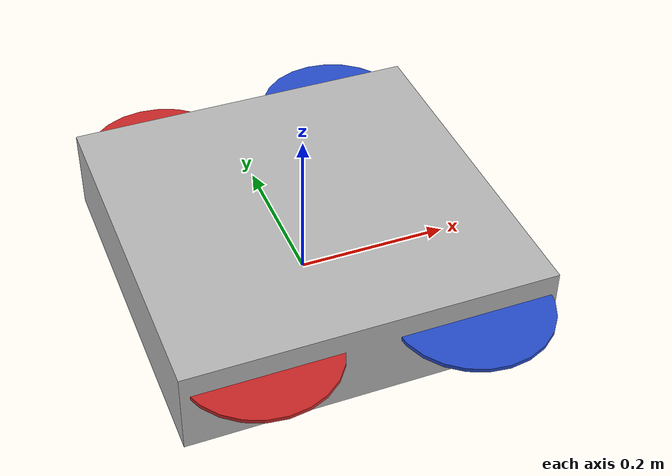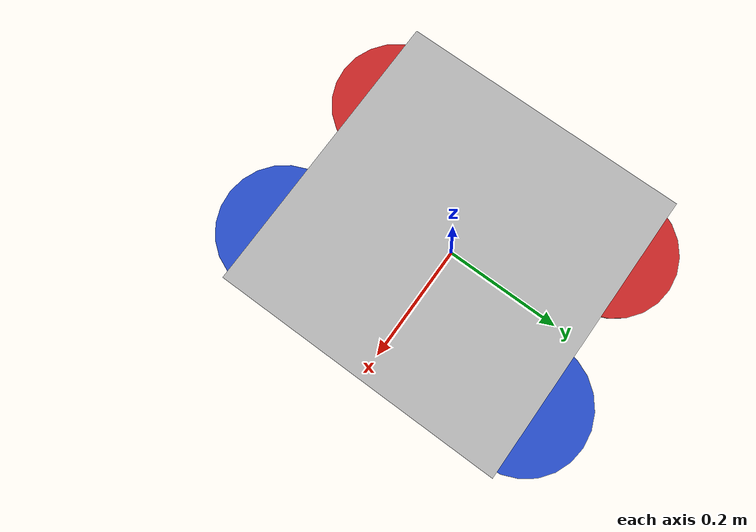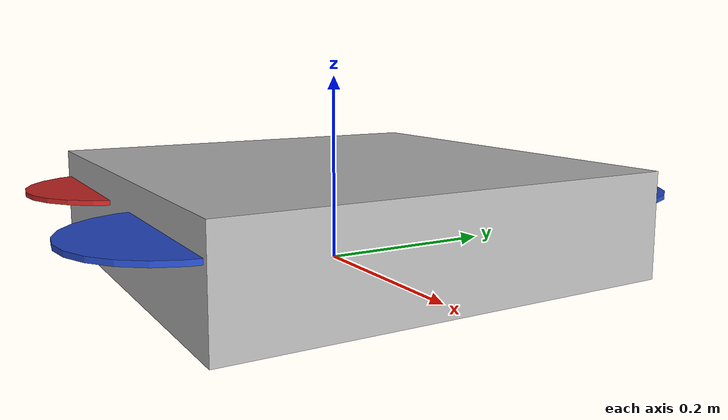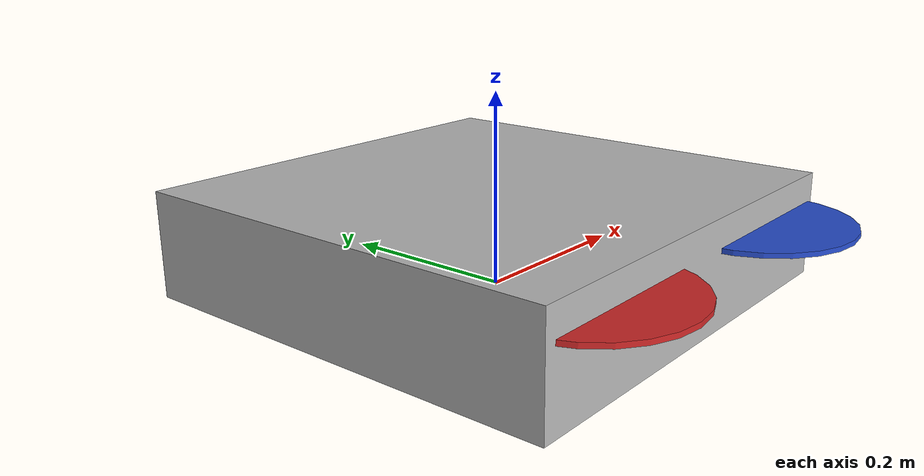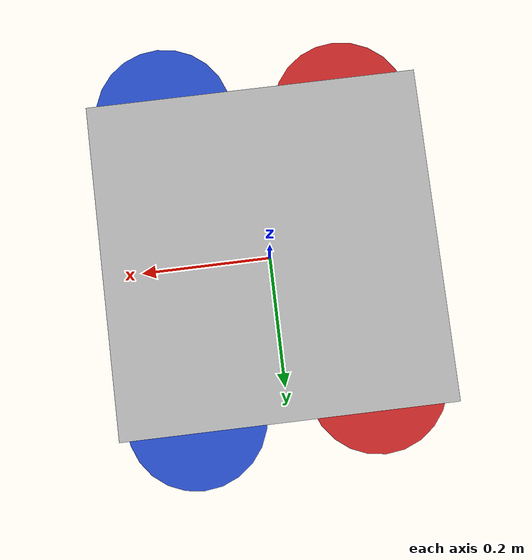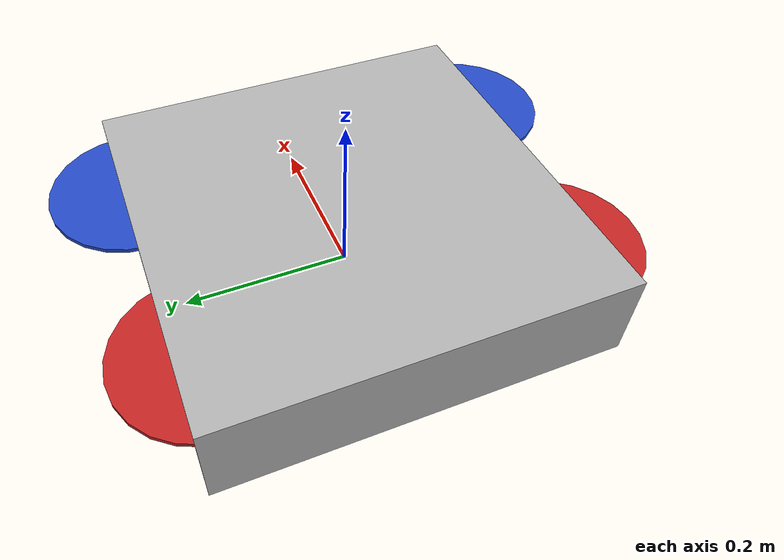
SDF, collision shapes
<sdf version='1.6'>
    <include>
        <uri>model://x3</uri>
        <plugin
            filename="ignition-gazebo-multicopter-motor-model-system"
            name="ignition::gazebo::systems::MulticopterMotorModel">
            <robotNamespace>X3</robotNamespace>
            <jointName>X3/rotor_0_joint</jointName>
            <linkName>X3/rotor_0</linkName>
            <turningDirection>ccw</turningDirection>
            <timeConstantUp>0.0125</timeConstantUp>
            <timeConstantDown>0.025</timeConstantDown>
            <maxRotVelocity>800.0</maxRotVelocity>
            <motorConstant>8.54858e-06</motorConstant>
            <momentConstant>0.016</momentConstant>
            <commandSubTopic>gazebo/command/motor_speed</commandSubTopic>
            <motorNumber>0</motorNumber>
            <rotorDragCoefficient>8.06428e-05</rotorDragCoefficient>
            <rollingMomentCoefficient>1e-06</rollingMomentCoefficient>
            <motorSpeedPubTopic>motor_speed/0</motorSpeedPubTopic>
            <rotorVelocitySlowdownSim>10</rotorVelocitySlowdownSim>
            <motorType>velocity</motorType>
        </plugin>
        <plugin
            filename="ignition-gazebo-multicopter-motor-model-system"
            name="ignition::gazebo::systems::MulticopterMotorModel">
            <robotNamespace>X3</robotNamespace>
            <jointName>X3/rotor_1_joint</jointName>
            <linkName>X3/rotor_1</linkName>
            <turningDirection>ccw</turningDirection>
            <timeConstantUp>0.0125</timeConstantUp>
            <timeConstantDown>0.025</timeConstantDown>
            <maxRotVelocity>800.0</maxRotVelocity>
            <motorConstant>8.54858e-06</motorConstant>
            <momentConstant>0.016</momentConstant>
            <commandSubTopic>gazebo/command/motor_speed</commandSubTopic>
            <motorNumber>1</motorNumber>
            <rotorDragCoefficient>8.06428e-05</rotorDragCoefficient>
            <rollingMomentCoefficient>1e-06</rollingMomentCoefficient>
            <motorSpeedPubTopic>motor_speed/1</motorSpeedPubTopic>
            <rotorVelocitySlowdownSim>10</rotorVelocitySlowdownSim>
            <motorType>velocity</motorType>
        </plugin>
        <plugin
            filename="ignition-gazebo-multicopter-motor-model-system"
            name="ignition::gazebo::systems::MulticopterMotorModel">
            <robotNamespace>X3</robotNamespace>
            <jointName>X3/rotor_2_joint</jointName>
            <linkName>X3/rotor_2</linkName>
            <turningDirection>cw</turningDirection>
            <timeConstantUp>0.0125</timeConstantUp>
            <timeConstantDown>0.025</timeConstantDown>
            <maxRotVelocity>800.0</maxRotVelocity>
            <motorConstant>8.54858e-06</motorConstant>
            <momentConstant>0.016</momentConstant>
            <commandSubTopic>gazebo/command/motor_speed</commandSubTopic>
            <motorNumber>2</motorNumber>
            <rotorDragCoefficient>8.06428e-05</rotorDragCoefficient>
            <rollingMomentCoefficient>1e-06</rollingMomentCoefficient>
            <motorSpeedPubTopic>motor_speed/2</motorSpeedPubTopic>
            <rotorVelocitySlowdownSim>10</rotorVelocitySlowdownSim>
            <motorType>velocity</motorType>
        </plugin>
        <plugin
            filename="ignition-gazebo-multicopter-motor-model-system"
            name="ignition::gazebo::systems::MulticopterMotorModel">
            <robotNamespace>X3</robotNamespace>
            <jointName>X3/rotor_3_joint</jointName>
            <linkName>X3/rotor_3</linkName>
            <turningDirection>cw</turningDirection>
            <timeConstantUp>0.0125</timeConstantUp>
            <timeConstantDown>0.025</timeConstantDown>
            <maxRotVelocity>800.0</maxRotVelocity>
            <motorConstant>8.54858e-06</motorConstant>
            <momentConstant>0.016</momentConstant>
            <commandSubTopic>gazebo/command/motor_speed</commandSubTopic>
            <motorNumber>3</motorNumber>
            <rotorDragCoefficient>8.06428e-05</rotorDragCoefficient>
            <rollingMomentCoefficient>1e-06</rollingMomentCoefficient>
            <motorSpeedPubTopic>motor_speed/3</motorSpeedPubTopic>
            <rotorVelocitySlowdownSim>10</rotorVelocitySlowdownSim>
            <motorType>velocity</motorType>
        </plugin>
        <plugin
            filename="libmavlink_sitl_ign_gazebo.so"
            name="mavlink_interface::GazeboMavlinkInterface">
                    <robotNamespace/>
            <imuSubTopic>/imu</imuSubTopic>
            <magSubTopic>/mag</magSubTopic>
            <baroSubTopic>/baro</baroSubTopic>
            <mavlink_addr>INADDR_ANY</mavlink_addr>
            <mavlink_udp_port>14560</mavlink_udp_port>
            <mavlink_tcp_port>4560</mavlink_tcp_port>
            <serialEnabled>0</serialEnabled>
            <serialDevice>/dev/ttyACM0</serialDevice>
            <baudRate>921600</baudRate>
            <qgc_addr>INADDR_ANY</qgc_addr>
            <qgc_udp_port>14550</qgc_udp_port>
            <sdk_addr>INADDR_ANY</sdk_addr>
            <sdk_udp_port>14540</sdk_udp_port>
            <hil_mode>0</hil_mode>
            <hil_state_level>0</hil_state_level>
            <vehicle_is_tailsitter>0</vehicle_is_tailsitter>
            <send_vision_estimation>0</send_vision_estimation>
            <send_odometry>1</send_odometry>
            <enable_lockstep>1</enable_lockstep>
            <use_tcp>1</use_tcp>
            <motorSpeedCommandPubTopic>/gazebo/command/motor_speed</motorSpeedCommandPubTopic>
            <control_channels>
            <channel name='rotor1'>
                <input_index>0</input_index>
                <input_offset>0</input_offset>
                <input_scaling>1000</input_scaling>
                <zero_position_disarmed>0</zero_position_disarmed>
                <zero_position_armed>100</zero_position_armed>
                <joint_control_type>velocity</joint_control_type>
            </channel>
            <channel name='rotor2'>
                <input_index>1</input_index>
                <input_offset>0</input_offset>
                <input_scaling>1000</input_scaling>
                <zero_position_disarmed>0</zero_position_disarmed>
                <zero_position_armed>100</zero_position_armed>
                <joint_control_type>velocity</joint_control_type>
            </channel>
            <channel name='rotor3'>
                <input_index>2</input_index>
                <input_offset>0</input_offset>
                <input_scaling>1000</input_scaling>
                <zero_position_disarmed>0</zero_position_disarmed>
                <zero_position_armed>100</zero_position_armed>
                <joint_control_type>velocity</joint_control_type>
            </channel>
            <channel name='rotor4'>
                <input_index>3</input_index>
                <input_offset>0</input_offset>
                <input_scaling>1000</input_scaling>
                <zero_position_disarmed>0</zero_position_disarmed>
                <zero_position_armed>100</zero_position_armed>
                <joint_control_type>velocity</joint_control_type>
            </channel>
            <channel name='rotor5'>
                <input_index>4</input_index>
                <input_offset>1</input_offset>
                <input_scaling>324.6</input_scaling>
                <zero_position_disarmed>0</zero_position_disarmed>
                <zero_position_armed>0</zero_position_armed>
                <joint_control_type>velocity</joint_control_type>
                <joint_control_pid>
                <p>0.1</p>
                <i>0</i>
                <d>0</d>
                <iMax>0.0</iMax>
                <iMin>0.0</iMin>
                <cmdMax>2</cmdMax>
                <cmdMin>-2</cmdMin>
                </joint_control_pid>
                <joint_name>zephyr_delta_wing::propeller_joint</joint_name>
            </channel>
            <channel name='rotor6'>
                <input_index>5</input_index>
                <input_offset>0</input_offset>
                <input_scaling>0.524</input_scaling>
                <zero_position_disarmed>0</zero_position_disarmed>
                <zero_position_armed>0</zero_position_armed>
                <joint_control_type>position</joint_control_type>
                <joint_name>zephyr_delta_wing::flap_left_joint</joint_name>
                <joint_control_pid>
                <p>10.0</p>
                <i>0</i>
                <d>0</d>
                <iMax>0</iMax>
                <iMin>0</iMin>
                <cmdMax>20</cmdMax>
                <cmdMin>-20</cmdMin>
                </joint_control_pid>
            </channel>
            <channel name='rotor7'>
                <input_index>6</input_index>
                <input_offset>0</input_offset>
                <input_scaling>0.524</input_scaling>
                <zero_position_disarmed>0</zero_position_disarmed>
                <zero_position_armed>0</zero_position_armed>
                <joint_control_type>position</joint_control_type>
                <joint_name>zephyr_delta_wing::flap_right_joint</joint_name>
                <joint_control_pid>
                <p>10.0</p>
                <i>0</i>
                <d>0</d>
                <iMax>0</iMax>
                <iMin>0</iMin>
                <cmdMax>20</cmdMax>
                <cmdMin>-20</cmdMin>
                </joint_control_pid>
            </channel>
            <channel name='rotor8'>
                <input_index>7</input_index>
                <input_offset>0</input_offset>
                <input_scaling>0.524</input_scaling>
                <zero_position_disarmed>0</zero_position_disarmed>
                <zero_position_armed>0</zero_position_armed>
                <joint_control_type>position</joint_control_type>
            </channel>
            </control_channels>
        </plugin>
    </include>
</sdf>

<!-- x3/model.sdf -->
<sdf version='1.6'>
  <model name='x3'>
    <pose>0 0 0.053302 0 0 0</pose>

      <link name="lidar_link">
        <pose>0 0 0 0 0 0</pose>
        <inertial>
          <mass>0.1</mass>
          <inertia>
            <ixx>0.000166667</ixx>
            <iyy>0.000166667</iyy>
            <izz>0.000166667</izz>
          </inertia>
        </inertial>
        <collision name="collision">
          <geometry>
            <box>
              <size>0.1 0.1 0.1</size>
            </box>
          </geometry>
        </collision>
        <visual name="visual">
          <geometry>
            <box>
              <size>0.1 0.1 0.1</size>
            </box>
          </geometry>
        </visual>

      <sensor name="depth_camera" type="depth">
          <pose>0 0 0 0 0 0</pose> <!-- Позиция относительно модели -->
          <depth_camera>
            <horizontal_fov>1.5707</horizontal_fov> <!-- Поле зрения по горизонтали -->
            <image_width>640</image_width>           <!-- Ширина изображения -->
            <image_height>480</image_height>         <!-- Высота изображения -->
            <near_clip>0.1</near_clip>               <!-- Минимальное расстояние до камеры -->
            <far_clip>50.0</far_clip>                <!-- Максимальное расстояние -->
            <update_rate>30</update_rate>            <!-- Частота обновлений -->
          </depth_camera>
          <topic>camera/depth_camera</topic>
      </sensor>

      <sensor name="imu_sensor" type="imu">
          <always_on>1</always_on>
          <update_rate>10</update_rate>
          <visualize>true</visualize>
          <topic>imu</topic>
      </sensor>

      <sensor name="boundingbox_camera_bottom" type="boundingbox_camera">
        <box_type>visible_box</box_type>
        <pose>0 0 -0.05 0 1.5708 0</pose>
        <camera>
          <horizontal_fov>1.047</horizontal_fov>
          <image>
            <width>640</width>
            <height>480</height>
          </image>
          <clip>
            <near>0.01</near>
            <far>100</far>
          </clip>
        </camera>
        <always_on>1</always_on>
        <update_rate>30</update_rate>
        <visualize>true</visualize>
        <topic>/stingray/topics/bottom_camera/bottom_camera</topic>
      </sensor>

      <sensor name="boundingbox_camera" type="boundingbox_camera">
        <box_type>visible_box</box_type>
        <pose>0 0 0.1 0 0 0</pose>
        <camera>
          <horizontal_fov>1.78024</horizontal_fov>
          <image>
            <width>640</width>
            <height>360</height>
          </image>
          <clip>
            <near>0.01</near>
            <far>100</far>
          </clip>
        </camera>
        <always_on>1</always_on>
        <update_rate>30</update_rate>
        <visualize>true</visualize>
        <topic>/stingray/topics/front_camera</topic>
      </sensor>

      </link>
      <joint name='lidar_joint' type='fixed'>
        <parent>X3/base_link</parent>
        <child>lidar_link</child>
      </joint>

    <link name='X3/base_link'>
      <pose frame=''>0 0 0 0 -0 0</pose>
      <inertial>
        <pose frame=''>0 0 0 0 -0 0</pose>
        <mass>1.5</mass>
        <inertia>
          <ixx>0.0347563</ixx>
          <ixy>0</ixy>
          <ixz>0</ixz>
          <iyy>0.07</iyy>
          <iyz>0</iyz>
          <izz>0.0977</izz>
        </inertia>
      </inertial>
      <collision name='X3/base_link_inertia_collision'>
        <pose frame=''>0 0 0 0 -0 0</pose>
        <geometry>
          <box>
            <size>0.47 0.47 0.11</size>
          </box>
        </geometry>
      </collision>
      <visual name='X3/base_link_inertia_visual'>
        <pose frame=''>0 0 0 0 -0 0</pose>
        <geometry>
          <mesh>
            <scale>1 1 1</scale>
            <uri>model://x3/meshes/x3.dae</uri>
          </mesh>
        </geometry>
      </visual>
    </link>
    <link name='X3/rotor_0'>
      <pose frame=''>0.13 -0.22 0.023 0 -0 0</pose>
      <inertial>
        <pose frame=''>0 0 0 0 -0 0</pose>
        <mass>0.005</mass>
        <inertia>
          <ixx>9.75e-07</ixx>
          <ixy>0</ixy>
          <ixz>0</ixz>
          <iyy>4.17041e-05</iyy>
          <iyz>0</iyz>
          <izz>4.26041e-05</izz>
        </inertia>
      </inertial>
      <collision name='X3/rotor_0_collision'>
        <pose frame=''>0 0 0 0 -0 0</pose>
        <geometry>
          <cylinder>
            <length>0.005</length>
            <radius>0.1</radius>
          </cylinder>
        </geometry>
        <surface>
          <contact>
            <ode/>
          </contact>
          <friction>
            <ode/>
          </friction>
        </surface>
      </collision>
      <visual name='X3/rotor_0_visual'>
        <pose frame=''>0 0 0 0 -0 0</pose>
        <geometry>
          <mesh>
            <scale>0.1 0.1 0.1</scale>
            <uri>model://x3/meshes/propeller_ccw.dae</uri>
          </mesh>
        </geometry>
        <material>
          <script>
            <name>Gazebo/Blue</name>
            <uri>file://media/materials/scripts/gazebo.material</uri>
          </script>
        </material>
      </visual>
      <gravity>1</gravity>
      <velocity_decay/>
    </link>
    <joint name='X3/rotor_0_joint' type='revolute'>
      <child>X3/rotor_0</child>
      <parent>X3/base_link</parent>
      <axis>
        <xyz>0 0 1</xyz>
        <limit>
          <lower>-1e+16</lower>
          <upper>1e+16</upper>
        </limit>
        <dynamics>
          <spring_reference>0</spring_reference>
          <spring_stiffness>0</spring_stiffness>
        </dynamics>
        <use_parent_model_frame>1</use_parent_model_frame>
      </axis>
    </joint>
    <link name='X3/rotor_1'>
      <pose frame=''>-0.13 0.2 0.023 0 -0 0</pose>
      <inertial>
        <pose frame=''>0 0 0 0 -0 0</pose>
        <mass>0.005</mass>
        <inertia>
          <ixx>9.75e-07</ixx>
          <ixy>0</ixy>
          <ixz>0</ixz>
          <iyy>4.17041e-05</iyy>
          <iyz>0</iyz>
          <izz>4.26041e-05</izz>
        </inertia>
      </inertial>
      <collision name='X3/rotor_1_collision'>
        <pose frame=''>0 0 0 0 -0 0</pose>
        <geometry>
          <cylinder>
            <length>0.005</length>
            <radius>0.1</radius>
          </cylinder>
        </geometry>
        <surface>
          <contact>
            <ode/>
          </contact>
          <friction>
            <ode/>
          </friction>
        </surface>
      </collision>
      <visual name='X3/rotor_1_visual'>
        <pose frame=''>0 0 0 0 -0 0</pose>
        <geometry>
          <mesh>
            <scale>0.1 0.1 0.1</scale>
            <uri>model://x3/meshes/propeller_ccw.dae</uri>
          </mesh>
        </geometry>
        <material>
          <script>
            <name>Gazebo/Red</name>
            <uri>file://media/materials/scripts/gazebo.material</uri>
          </script>
        </material>
      </visual>
      <gravity>1</gravity>
      <velocity_decay/>
    </link>
    <joint name='X3/rotor_1_joint' type='revolute'>
      <child>X3/rotor_1</child>
      <parent>X3/base_link</parent>
      <axis>
        <xyz>0 0 1</xyz>
        <limit>
          <lower>-1e+16</lower>
          <upper>1e+16</upper>
        </limit>
        <dynamics>
          <spring_reference>0</spring_reference>
          <spring_stiffness>0</spring_stiffness>
        </dynamics>
        <use_parent_model_frame>1</use_parent_model_frame>
      </axis>
    </joint>
    <link name='X3/rotor_2'>
      <pose frame=''>0.13 0.22 0.023 0 -0 0</pose>
      <inertial>
        <pose frame=''>0 0 0 0 -0 0</pose>
        <mass>0.005</mass>
        <inertia>
          <ixx>9.75e-07</ixx>
          <ixy>0</ixy>
          <ixz>0</ixz>
          <iyy>4.17041e-05</iyy>
          <iyz>0</iyz>
          <izz>4.26041e-05</izz>
        </inertia>
      </inertial>
      <collision name='X3/rotor_2_collision'>
        <pose frame=''>0 0 0 0 -0 0</pose>
        <geometry>
          <cylinder>
            <length>0.005</length>
            <radius>0.1</radius>
          </cylinder>
        </geometry>
        <surface>
          <contact>
            <ode/>
          </contact>
          <friction>
            <ode/>
          </friction>
        </surface>
      </collision>
      <visual name='X3/rotor_2_visual'>
        <pose frame=''>0 0 0 0 -0 0</pose>
        <geometry>
          <mesh>
            <scale>0.1 0.1 0.1</scale>
            <uri>model://x3/meshes/propeller_cw.dae</uri>
          </mesh>
        </geometry>
        <material>
          <script>
            <name>Gazebo/Blue</name>
            <uri>file://media/materials/scripts/gazebo.material</uri>
          </script>
        </material>
      </visual>
      <gravity>1</gravity>
      <velocity_decay/>
    </link>
    <joint name='X3/rotor_2_joint' type='revolute'>
      <child>X3/rotor_2</child>
      <parent>X3/base_link</parent>
      <axis>
        <xyz>0 0 1</xyz>
        <limit>
          <lower>-1e+16</lower>
          <upper>1e+16</upper>
        </limit>
        <dynamics>
          <spring_reference>0</spring_reference>
          <spring_stiffness>0</spring_stiffness>
        </dynamics>
        <use_parent_model_frame>1</use_parent_model_frame>
      </axis>
    </joint>
    <link name='X3/rotor_3'>
      <pose frame=''>-0.13 -0.2 0.023 0 -0 0</pose>
      <inertial>
        <pose frame=''>0 0 0 0 -0 0</pose>
        <mass>0.005</mass>
        <inertia>
          <ixx>9.75e-07</ixx>
          <ixy>0</ixy>
          <ixz>0</ixz>
          <iyy>4.17041e-05</iyy>
          <iyz>0</iyz>
          <izz>4.26041e-05</izz>
        </inertia>
      </inertial>
      <collision name='X3/rotor_3_collision'>
        <pose frame=''>0 0 0 0 -0 0</pose>
        <geometry>
          <cylinder>
            <length>0.005</length>
            <radius>0.1</radius>
          </cylinder>
        </geometry>
        <surface>
          <contact>
            <ode/>
          </contact>
          <friction>
            <ode/>
          </friction>
        </surface>
      </collision>
      <visual name='X3/rotor_3_visual'>
        <pose frame=''>0 0 0 0 -0 0</pose>
        <geometry>
          <mesh>
            <scale>0.1 0.1 0.1</scale>
            <uri>model://x3/meshes/propeller_cw.dae</uri>
          </mesh>
        </geometry>
        <material>
          <script>
            <name>Gazebo/Red</name>
            <uri>file://media/materials/scripts/gazebo.material</uri>
          </script>
        </material>
      </visual>
      <gravity>1</gravity>
      <velocity_decay/>
    </link>
    <joint name='X3/rotor_3_joint' type='revolute'>
      <child>X3/rotor_3</child>
      <parent>X3/base_link</parent>
      <axis>
        <xyz>0 0 1</xyz>
        <limit>
          <lower>-1e+16</lower>
          <upper>1e+16</upper>
        </limit>
        <dynamics>
          <spring_reference>0</spring_reference>
          <spring_stiffness>0</spring_stiffness>
        </dynamics>
        <use_parent_model_frame>1</use_parent_model_frame>
      </axis>
    </joint>

  </model>
</sdf>
